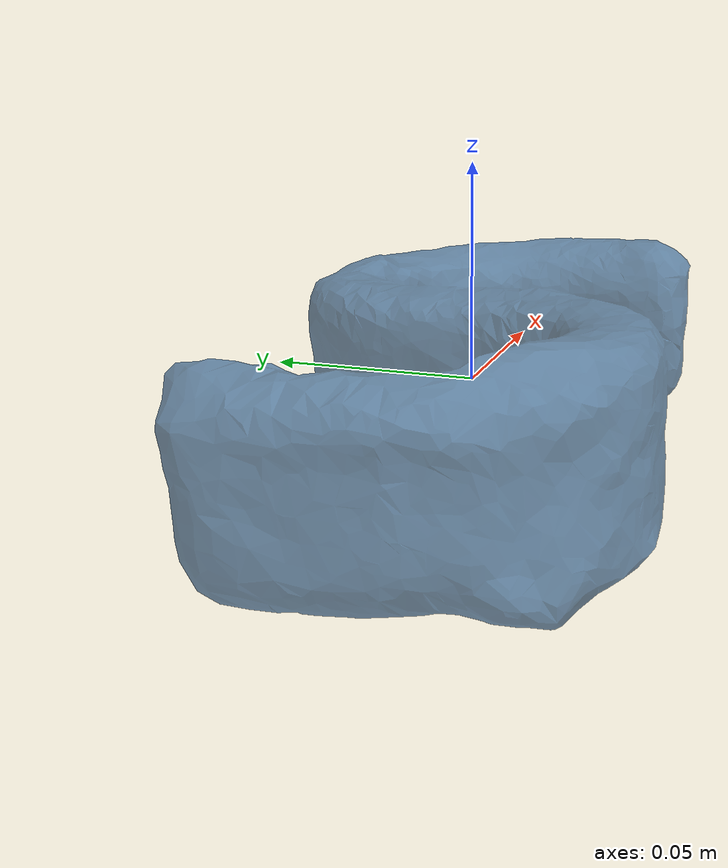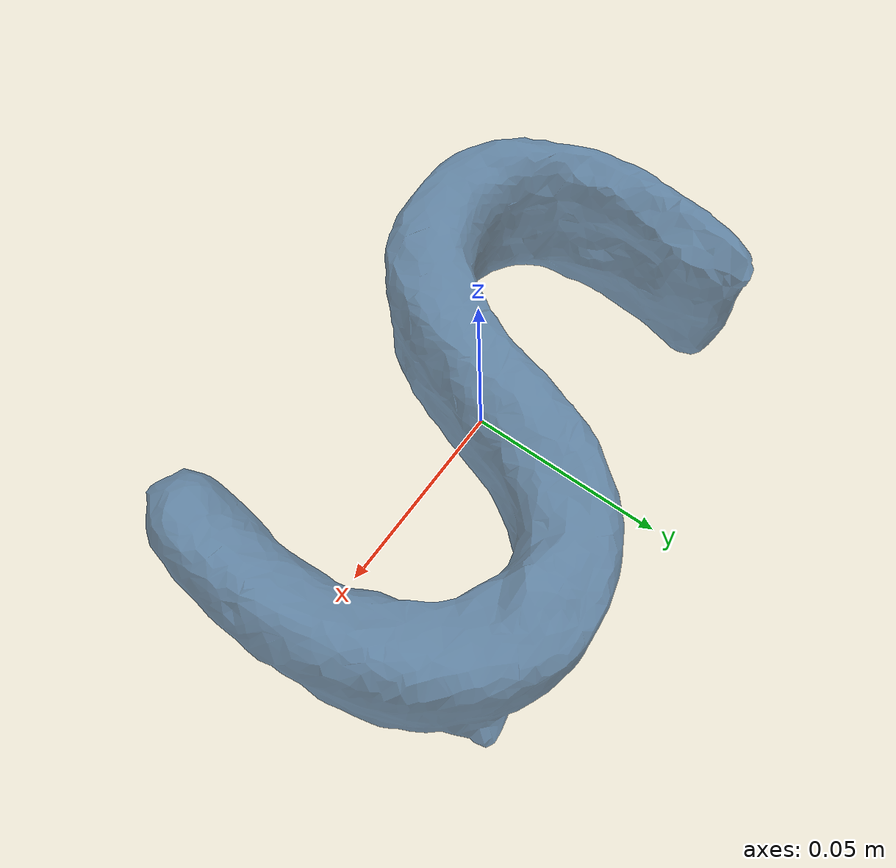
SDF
<?xml version='1.0' encoding='UTF-8'?>
<!-- This SDF was autogenerated by obj_to_drake_sdf.py -->
<sdf version="1.7">
  <model name="S_shape_video">
    <link name="S_shape_video">
      <inertial>
        <pose>0 0 0 0 0 0</pose>
        <mass>0.05</mass>
        <inertia>
          <ixx>4.5030479e-05</ixx>
          <iyy>0.00012770483</iyy>
          <izz>0.00015781315</izz>
          <ixy>-1.9459348e-05</ixy>
          <ixz>3.9443772e-08</ixz>
          <iyz>2.0621239e-06</iyz>
        </inertia>
      </inertial>
      <visual name="S">
        <pose>0 0 0 0 0 0</pose>
        <geometry>
          <mesh>
            <uri>S_shape_video.obj</uri>
          </mesh>
        </geometry>
        <material>
          <diffuse>0.19607843137254902 0.39215686274509803 0.5882352941176471 0.7</diffuse>
        </material>
      </visual>
    </link>
  </model>
</sdf>
